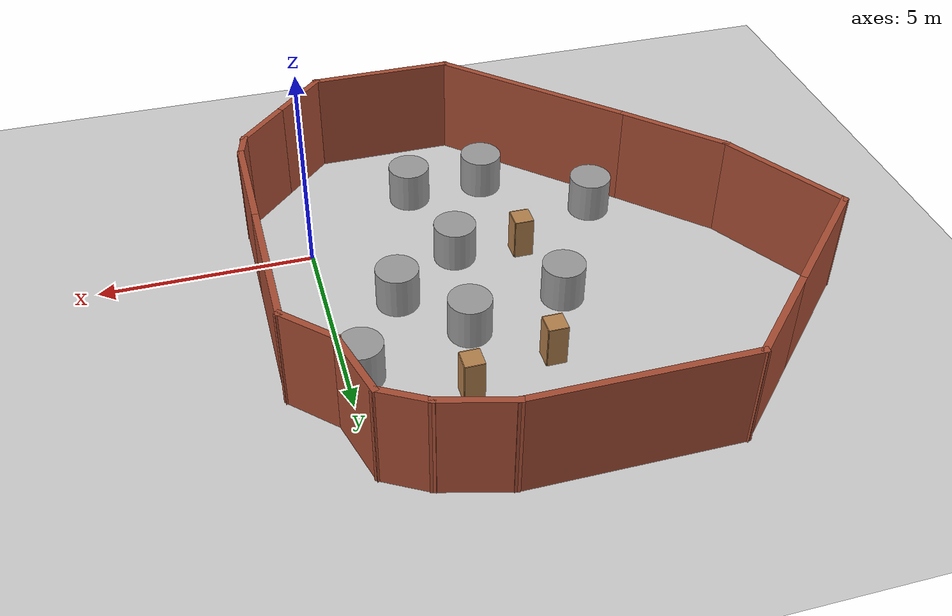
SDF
<sdf version="1.4">
 <world name="default">
  <light name="sun" type="directional">
   <pose>0 0 10 0 -0 0</pose>
   <diffuse>0.8 0.8 0.8 1</diffuse>
   <specular>0.2 0.2 0.2 1</specular>
   <attenuation>
    <range>1000</range>
    <constant>0.9</constant>
    <linear>0.01</linear>
    <quadratic>0.001</quadratic>
   </attenuation>
   <direction>0.5 0.1 -0.9</direction>
  </light>
  <model name="ground_plane">
   <static>1</static>
   <link name="link">
    <collision name="collision">
     <geometry><plane><normal>0 0 1</normal><size>100 100</size></plane></geometry>
     <surface><friction><ode><mu>100</mu><mu2>50</mu2></ode></friction></surface>
    </collision>
    <visual name="visual">
     <cast_shadows>0</cast_shadows>
     <geometry><plane><normal>0 0 1</normal><size>100 100</size></plane></geometry>
     <material>
      <script><uri>file://media/materials/scripts/gazebo.material</uri><name>Gazebo/Grey</name></script>
     </material>
    </visual>
    <velocity_decay><linear>0</linear><angular>0</angular></velocity_decay>
   </link>
  </model>
  <scene><ambient>0.4 0.4 0.4 1</ambient><background>0.7 0.7 0.7 1</background><shadows>0</shadows></scene>
  <physics name="default_physics" default="0" type="ode">
   <max_step_size>0.01</max_step_size>
   <real_time_factor>2</real_time_factor>
   <real_time_update_rate>200</real_time_update_rate>
  </physics>
  <scene><ambient>0.4 0.4 0.4 1</ambient><background>0.7 0.7 0.7 1</background><shadows>1</shadows></scene>
  <spherical_coordinates>
   <surface_model>EARTH_WGS84</surface_model>
   <latitude_deg>0</latitude_deg>
   <longitude_deg>0</longitude_deg>
   <elevation>0</elevation>
   <heading_deg>0</heading_deg>
  </spherical_coordinates>
  <model name="unit_cylinder_0">
   <pose>-3.293 0.855573 0.499993 -3e-06 2e-06 0</pose>
   <link name="link">
    <inertial>
     <mass>1</mass>
     <inertia><ixx>0.145833</ixx><ixy>0</ixy><ixz>0</ixz><iyy>0.145833</iyy><iyz>0</iyz><izz>0.125</izz></inertia>
    </inertial>
    <collision name="collision">
     <geometry><cylinder><radius>0.5</radius><length>1</length></cylinder></geometry>
    </collision>
    <visual name="visual">
     <geometry><cylinder><radius>0.5</radius><length>1</length></cylinder></geometry>
     <material>
      <script><name>Gazebo/Grey</name><uri>file://media/materials/scripts/gazebo.material</uri></script>
     </material>
    </visual>
   </link>
  </model>
  <model name="unit_cylinder_1">
   <pose>-0.333243 4.21471 0.499998 3e-06 -2e-06 0</pose>
   <link name="link">
    <inertial>
     <mass>1</mass>
     <inertia><ixx>0.145833</ixx><ixy>0</ixy><ixz>0</ixz><iyy>0.145833</iyy><iyz>0</iyz><izz>0.125</izz></inertia>
    </inertial>
    <collision name="collision">
     <geometry><cylinder><radius>0.5</radius><length>1</length></cylinder></geometry>
    </collision>
    <visual name="visual">
     <geometry><cylinder><radius>0.5</radius><length>1</length></cylinder></geometry>
     <material>
      <script><name>Gazebo/Grey</name><uri>file://media/materials/scripts/gazebo.material</uri></script>
     </material>
    </visual>
   </link>
  </model>
  <model name="unit_cylinder_2">
   <pose>-2.91667 3.48793 0.499993 -3e-06 2e-06 0</pose>
   <link name="link">
    <inertial>
     <mass>1</mass>
     <inertia><ixx>0.145833</ixx><ixy>0</ixy><ixz>0</ixz><iyy>0.145833</iyy><iyz>0</iyz><izz>0.125</izz></inertia>
    </inertial>
    <collision name="collision">
     <geometry><cylinder><radius>0.5</radius><length>1</length></cylinder></geometry>
    </collision>
    <visual name="visual">
     <geometry><cylinder><radius>0.5</radius><length>1</length></cylinder></geometry>
     <material>
      <script><name>Gazebo/Grey</name><uri>file://media/materials/scripts/gazebo.material</uri></script>
     </material>
    </visual>
   </link>
  </model>
  <model name="unit_cylinder_3">
   <pose>-5.29042 2.90103 0.499998 3e-06 -2e-06 0</pose>
   <link name="link">
    <inertial>
     <mass>1</mass>
     <inertia><ixx>0.145833</ixx><ixy>0</ixy><ixz>0</ixz><iyy>0.145833</iyy><iyz>0</iyz><izz>0.125</izz></inertia>
    </inertial>
    <collision name="collision">
     <geometry><cylinder><radius>0.5</radius><length>1</length></cylinder></geometry>
    </collision>
    <visual name="visual">
     <geometry><cylinder><radius>0.5</radius><length>1</length></cylinder></geometry>
     <material>
      <script><name>Gazebo/Grey</name><uri>file://media/materials/scripts/gazebo.material</uri></script>
     </material>
    </visual>
   </link>
  </model>
  <model name="cabinet">
   <static>1</static>
   <link name="cabinet_bottom_plate">
    <inertial>
     <pose>0 0 -1 0 -0 0</pose>
     <inertia><ixx>2.05</ixx><ixy>0</ixy><ixz>0</ixz><iyy>2.05</iyy><iyz>0</iyz><izz>2.05</izz></inertia>
     <mass>25</mass>
    </inertial>
    <collision name="cabinet_bottom_plate_geom">
     <pose>0 0 0.01 0 -0 0</pose>
     <geometry><box><size>0.45 0.45 0.02</size></box></geometry>
    </collision>
    <visual name="cabinet_bottom_plate_geom_visual">
     <pose>0 0 0.01 0 -0 0</pose>
     <geometry><box><size>0.45 0.45 0.02</size></box></geometry>
     <material>
      <script><uri>file://media/materials/scripts/gazebo.material</uri><name>Gazebo/Wood</name></script>
     </material>
    </visual>
    <collision name="cabinet_bottom_plate_geom_cabinet_back_plate">
     <pose>0.235 0 0.51 0 -0 0</pose>
     <geometry><box><size>0.02 0.45 1.02</size></box></geometry>
    </collision>
    <visual name="cabinet_bottom_plate_geom_cabinet_back_plate_visual">
     <pose>0.235 0 0.51 0 -0 0</pose>
     <geometry><box><size>0.02 0.45 1.02</size></box></geometry>
     <material>
      <script><uri>file://media/materials/scripts/gazebo.material</uri><name>Gazebo/Wood</name></script>
     </material>
    </visual>
    <collision name="cabinet_bottom_plate_geom_cabinet_left_plate">
     <pose>0 0.235 0.51 0 -0 0</pose>
     <geometry><box><size>0.45 0.02 1.02</size></box></geometry>
    </collision>
    <visual name="cabinet_bottom_plate_geom_cabinet_left_plate_visual">
     <pose>0 0.235 0.51 0 -0 0</pose>
     <geometry><box><size>0.45 0.02 1.02</size></box></geometry>
     <material>
      <script><uri>file://media/materials/scripts/gazebo.material</uri><name>Gazebo/Wood</name></script>
     </material>
    </visual>
    <collision name="cabinet_bottom_plate_geom_cabinet_middle_plate">
     <pose>0 0 0.51 0 -0 0</pose>
     <geometry><box><size>0.45 0.45 0.02</size></box></geometry>
    </collision>
    <visual name="cabinet_bottom_plate_geom_cabinet_middle_plate_visual">
     <pose>0 0 0.51 0 -0 0</pose>
     <geometry><box><size>0.45 0.45 0.02</size></box></geometry>
     <material>
      <script><uri>file://media/materials/scripts/gazebo.material</uri><name>Gazebo/Wood</name></script>
     </material>
    </visual>
    <collision name="cabinet_bottom_plate_geom_cabinet_right_plate">
     <pose>0 -0.235 0.51 0 -0 0</pose>
     <geometry><box><size>0.45 0.02 1.02</size></box></geometry>
    </collision>
    <visual name="cabinet_bottom_plate_geom_cabinet_right_plate_visual">
     <pose>0 -0.235 0.51 0 -0 0</pose>
     <geometry><box><size>0.45 0.02 1.02</size></box></geometry>
     <material>
      <script><uri>file://media/materials/scripts/gazebo.material</uri><name>Gazebo/Wood</name></script>
     </material>
    </visual>
    <collision name="cabinet_bottom_plate_geom_cabinet_top_plate">
     <pose>0 0 1.01 0 -0 0</pose>
     <geometry><box><size>0.45 0.45 0.02</size></box></geometry>
    </collision>
    <visual name="cabinet_bottom_plate_geom_cabinet_top_plate_visual">
     <pose>0 0 1.01 0 -0 0</pose>
     <geometry><box><size>0.45 0.45 0.02</size></box></geometry>
     <material>
      <script><uri>file://media/materials/scripts/gazebo.material</uri><name>Gazebo/Wood</name></script>
     </material>
    </visual>
   </link>
   <pose>-2.45991 5.27165 0 0 -0 0</pose>
  </model>
  <model name="cabinet_0">
   <static>1</static>
   <link name="cabinet_bottom_plate">
    <inertial>
     <pose>0 0 -1 0 -0 0</pose>
     <inertia><ixx>2.05</ixx><ixy>0</ixy><ixz>0</ixz><iyy>2.05</iyy><iyz>0</iyz><izz>2.05</izz></inertia>
     <mass>25</mass>
    </inertial>
    <collision name="cabinet_bottom_plate_geom">
     <pose>0 0 0.01 0 -0 0</pose>
     <geometry><box><size>0.45 0.45 0.02</size></box></geometry>
    </collision>
    <visual name="cabinet_bottom_plate_geom_visual">
     <pose>0 0 0.01 0 -0 0</pose>
     <geometry><box><size>0.45 0.45 0.02</size></box></geometry>
     <material>
      <script><uri>file://media/materials/scripts/gazebo.material</uri><name>Gazebo/Wood</name></script>
     </material>
    </visual>
    <collision name="cabinet_bottom_plate_geom_cabinet_back_plate">
     <pose>0.235 0 0.51 0 -0 0</pose>
     <geometry><box><size>0.02 0.45 1.02</size></box></geometry>
    </collision>
    <visual name="cabinet_bottom_plate_geom_cabinet_back_plate_visual">
     <pose>0.235 0 0.51 0 -0 0</pose>
     <geometry><box><size>0.02 0.45 1.02</size></box></geometry>
     <material>
      <script><uri>file://media/materials/scripts/gazebo.material</uri><name>Gazebo/Wood</name></script>
     </material>
    </visual>
    <collision name="cabinet_bottom_plate_geom_cabinet_left_plate">
     <pose>0 0.235 0.51 0 -0 0</pose>
     <geometry><box><size>0.45 0.02 1.02</size></box></geometry>
    </collision>
    <visual name="cabinet_bottom_plate_geom_cabinet_left_plate_visual">
     <pose>0 0.235 0.51 0 -0 0</pose>
     <geometry><box><size>0.45 0.02 1.02</size></box></geometry>
     <material>
      <script><uri>file://media/materials/scripts/gazebo.material</uri><name>Gazebo/Wood</name></script>
     </material>
    </visual>
    <collision name="cabinet_bottom_plate_geom_cabinet_middle_plate">
     <pose>0 0 0.51 0 -0 0</pose>
     <geometry><box><size>0.45 0.45 0.02</size></box></geometry>
    </collision>
    <visual name="cabinet_bottom_plate_geom_cabinet_middle_plate_visual">
     <pose>0 0 0.51 0 -0 0</pose>
     <geometry><box><size>0.45 0.45 0.02</size></box></geometry>
     <material>
      <script><uri>file://media/materials/scripts/gazebo.material</uri><name>Gazebo/Wood</name></script>
     </material>
    </visual>
    <collision name="cabinet_bottom_plate_geom_cabinet_right_plate">
     <pose>0 -0.235 0.51 0 -0 0</pose>
     <geometry><box><size>0.45 0.02 1.02</size></box></geometry>
    </collision>
    <visual name="cabinet_bottom_plate_geom_cabinet_right_plate_visual">
     <pose>0 -0.235 0.51 0 -0 0</pose>
     <geometry><box><size>0.45 0.02 1.02</size></box></geometry>
     <material>
      <script><uri>file://media/materials/scripts/gazebo.material</uri><name>Gazebo/Wood</name></script>
     </material>
    </visual>
    <collision name="cabinet_bottom_plate_geom_cabinet_top_plate">
     <pose>0 0 1.01 0 -0 0</pose>
     <geometry><box><size>0.45 0.45 0.02</size></box></geometry>
    </collision>
    <visual name="cabinet_bottom_plate_geom_cabinet_top_plate_visual">
     <pose>0 0 1.01 0 -0 0</pose>
     <geometry><box><size>0.45 0.45 0.02</size></box></geometry>
     <material>
      <script><uri>file://media/materials/scripts/gazebo.material</uri><name>Gazebo/Wood</name></script>
     </material>
    </visual>
   </link>
   <pose>-4.89515 1.01441 0 0 -0 0</pose>
  </model>
  <model name="cabinet_1">
   <static>1</static>
   <link name="cabinet_bottom_plate">
    <inertial>
     <pose>0 0 -1 0 -0 0</pose>
     <inertia><ixx>2.05</ixx><ixy>0</ixy><ixz>0</ixz><iyy>2.05</iyy><iyz>0</iyz><izz>2.05</izz></inertia>
     <mass>25</mass>
    </inertial>
    <collision name="cabinet_bottom_plate_geom">
     <pose>0 0 0.01 0 -0 0</pose>
     <geometry><box><size>0.45 0.45 0.02</size></box></geometry>
    </collision>
    <visual name="cabinet_bottom_plate_geom_visual">
     <pose>0 0 0.01 0 -0 0</pose>
     <geometry><box><size>0.45 0.45 0.02</size></box></geometry>
     <material>
      <script><uri>file://media/materials/scripts/gazebo.material</uri><name>Gazebo/Wood</name></script>
     </material>
    </visual>
    <collision name="cabinet_bottom_plate_geom_cabinet_back_plate">
     <pose>0.235 0 0.51 0 -0 0</pose>
     <geometry><box><size>0.02 0.45 1.02</size></box></geometry>
    </collision>
    <visual name="cabinet_bottom_plate_geom_cabinet_back_plate_visual">
     <pose>0.235 0 0.51 0 -0 0</pose>
     <geometry><box><size>0.02 0.45 1.02</size></box></geometry>
     <material>
      <script><uri>file://media/materials/scripts/gazebo.material</uri><name>Gazebo/Wood</name></script>
     </material>
    </visual>
    <collision name="cabinet_bottom_plate_geom_cabinet_left_plate">
     <pose>0 0.235 0.51 0 -0 0</pose>
     <geometry><box><size>0.45 0.02 1.02</size></box></geometry>
    </collision>
    <visual name="cabinet_bottom_plate_geom_cabinet_left_plate_visual">
     <pose>0 0.235 0.51 0 -0 0</pose>
     <geometry><box><size>0.45 0.02 1.02</size></box></geometry>
     <material>
      <script><uri>file://media/materials/scripts/gazebo.material</uri><name>Gazebo/Wood</name></script>
     </material>
    </visual>
    <collision name="cabinet_bottom_plate_geom_cabinet_middle_plate">
     <pose>0 0 0.51 0 -0 0</pose>
     <geometry><box><size>0.45 0.45 0.02</size></box></geometry>
    </collision>
    <visual name="cabinet_bottom_plate_geom_cabinet_middle_plate_visual">
     <pose>0 0 0.51 0 -0 0</pose>
     <geometry><box><size>0.45 0.45 0.02</size></box></geometry>
     <material>
      <script><uri>file://media/materials/scripts/gazebo.material</uri><name>Gazebo/Wood</name></script>
     </material>
    </visual>
    <collision name="cabinet_bottom_plate_geom_cabinet_right_plate">
     <pose>0 -0.235 0.51 0 -0 0</pose>
     <geometry><box><size>0.45 0.02 1.02</size></box></geometry>
    </collision>
    <visual name="cabinet_bottom_plate_geom_cabinet_right_plate_visual">
     <pose>0 -0.235 0.51 0 -0 0</pose>
     <geometry><box><size>0.45 0.02 1.02</size></box></geometry>
     <material>
      <script><uri>file://media/materials/scripts/gazebo.material</uri><name>Gazebo/Wood</name></script>
     </material>
    </visual>
    <collision name="cabinet_bottom_plate_geom_cabinet_top_plate">
     <pose>0 0 1.01 0 -0 0</pose>
     <geometry><box><size>0.45 0.45 0.02</size></box></geometry>
    </collision>
    <visual name="cabinet_bottom_plate_geom_cabinet_top_plate_visual">
     <pose>0 0 1.01 0 -0 0</pose>
     <geometry><box><size>0.45 0.45 0.02</size></box></geometry>
     <material>
      <script><uri>file://media/materials/scripts/gazebo.material</uri><name>Gazebo/Wood</name></script>
     </material>
    </visual>
   </link>
   <pose>-4.46047 4.70394 0 0 -0 0</pose>
  </model>
  <model name="unit_cylinder">
   <pose>-1.61364 2.07902 0.499998 3e-06 -3e-06 0</pose>
   <link name="link">
    <inertial>
     <mass>1</mass>
     <inertia><ixx>0.145833</ixx><ixy>0</ixy><ixz>0</ixz><iyy>0.145833</iyy><iyz>0</iyz><izz>0.125</izz></inertia>
    </inertial>
    <collision name="collision">
     <geometry><cylinder><radius>0.5</radius><length>1</length></cylinder></geometry>
    </collision>
    <visual name="visual">
     <geometry><cylinder><radius>0.5</radius><length>1</length></cylinder></geometry>
     <material>
      <script><name>Gazebo/Grey</name><uri>file://media/materials/scripts/gazebo.material</uri></script>
     </material>
    </visual>
   </link>
  </model>
  <model name="unit_cylinder_4">
   <pose>-2.79674 -1.69257 0.499998 3e-06 -4e-06 0</pose>
   <link name="link">
    <inertial>
     <mass>1</mass>
     <inertia><ixx>0.145833</ixx><ixy>0</ixy><ixz>0</ixz><iyy>0.145833</iyy><iyz>0</iyz><izz>0.125</izz></inertia>
    </inertial>
    <collision name="collision">
     <geometry><cylinder><radius>0.5</radius><length>1</length></cylinder></geometry>
    </collision>
    <visual name="visual">
     <geometry><cylinder><radius>0.5</radius><length>1</length></cylinder></geometry>
     <material>
      <script><name>Gazebo/Grey</name><uri>file://media/materials/scripts/gazebo.material</uri></script>
     </material>
    </visual>
   </link>
  </model>
  <model name="unit_cylinder_5">
   <pose>-4.68736 -1.75793 0.499998 3e-06 -4e-06 0</pose>
   <link name="link">
    <inertial>
     <mass>1</mass>
     <inertia><ixx>0.145833</ixx><ixy>0</ixy><ixz>0</ixz><iyy>0.145833</iyy><iyz>0</iyz><izz>0.125</izz></inertia>
    </inertial>
    <collision name="collision">
     <geometry><cylinder><radius>0.5</radius><length>1</length></cylinder></geometry>
    </collision>
    <visual name="visual">
     <geometry><cylinder><radius>0.5</radius><length>1</length></cylinder></geometry>
     <material>
      <script><name>Gazebo/Grey</name><uri>file://media/materials/scripts/gazebo.material</uri></script>
     </material>
    </visual>
   </link>
  </model>
  <model name="unit_cylinder_6">
   <pose>-7.0254 -0.101433 0.499998 3e-06 -4e-06 0</pose>
   <link name="link">
    <inertial>
     <mass>1</mass>
     <inertia><ixx>0.145833</ixx><ixy>0</ixy><ixz>0</ixz><iyy>0.145833</iyy><iyz>0</iyz><izz>0.125</izz></inertia>
    </inertial>
    <collision name="collision">
     <geometry><cylinder><radius>0.5</radius><length>1</length></cylinder></geometry>
    </collision>
    <visual name="visual">
     <geometry><cylinder><radius>0.5</radius><length>1</length></cylinder></geometry>
     <material>
      <script><name>Gazebo/Grey</name><uri>file://media/materials/scripts/gazebo.material</uri></script>
     </material>
    </visual>
   </link>
  </model>
  <model name="unit_cylinder_7">
   <pose>-1.35214 6.73744 0.499992 -3e-06 4e-06 0</pose>
   <link name="link">
    <inertial>
     <mass>1</mass>
     <inertia><ixx>0.145833</ixx><ixy>0</ixy><ixz>0</ixz><iyy>0.145833</iyy><iyz>0</iyz><izz>0.125</izz></inertia>
    </inertial>
    <collision name="collision">
     <geometry><cylinder><radius>0.5</radius><length>1</length></cylinder></geometry>
    </collision>
    <visual name="visual">
     <geometry><cylinder><radius>0.5</radius><length>1</length></cylinder></geometry>
     <material>
      <script><name>Gazebo/Grey</name><uri>file://media/materials/scripts/gazebo.material</uri></script>
     </material>
    </visual>
   </link>
  </model>
  <model name="target_reach">
   <pose>-5.00402 2.05485 0 0 -0 0</pose>
   <link name="Wall_10">
    <collision name="Wall_10_Collision">
     <geometry><box><size>1.25 0.15 2.5</size></box></geometry>
     <pose>0 0 1.25 0 -0 0</pose>
    </collision>
    <visual name="Wall_10_Visual">
     <pose>0 0 1.25 0 -0 0</pose>
     <geometry><box><size>1.25 0.15 2.5</size></box></geometry>
     <material>
      <script><uri>file://media/materials/scripts/gazebo.material</uri><name>Gazebo/Bricks</name></script>
      <ambient>1 1 1 1</ambient>
     </material>
     <meta><layer>0</layer></meta>
    </visual>
    <pose>4.44025 5.22574 0 0 -0 2.61799</pose>
   </link>
   <link name="Wall_11">
    <collision name="Wall_11_Collision">
     <geometry><box><size>1.75 0.15 2.5</size></box></geometry>
     <pose>0 0 1.25 0 -0 0</pose>
    </collision>
    <visual name="Wall_11_Visual">
     <pose>0 0 1.25 0 -0 0</pose>
     <geometry><box><size>1.75 0.15 2.5</size></box></geometry>
     <material>
      <script><uri>file://media/materials/scripts/gazebo.material</uri><name>Gazebo/Bricks</name></script>
      <ambient>1 1 1 1</ambient>
     </material>
     <meta><layer>0</layer></meta>
    </visual>
    <pose>3.1912 5.7078 0 0 -0 2.87979</pose>
   </link>
   <link name="Wall_12">
    <collision name="Wall_12_Collision">
     <geometry><box><size>5 0.15 2.5</size></box></geometry>
     <pose>0 0 1.25 0 -0 0</pose>
    </collision>
    <visual name="Wall_12_Visual">
     <pose>0 0 1.25 0 -0 0</pose>
     <geometry><box><size>5 0.15 2.5</size></box></geometry>
     <material>
      <script><uri>file://media/materials/scripts/gazebo.material</uri><name>Gazebo/Bricks</name></script>
      <ambient>1 1 1 1</ambient>
     </material>
     <meta><layer>0</layer></meta>
    </visual>
    <pose>-0.006541 5.91485 0 0 -0 3.14159</pose>
   </link>
   <link name="Wall_13">
    <collision name="Wall_13_Collision">
     <geometry><box><size>2.5 0.15 2.5</size></box></geometry>
     <pose>0 0 1.25 0 -0 0</pose>
    </collision>
    <visual name="Wall_13_Visual">
     <pose>0 0 1.25 0 -0 0</pose>
     <geometry><box><size>2.5 0.15 2.5</size></box></geometry>
     <material>
      <script><uri>file://media/materials/scripts/gazebo.material</uri><name>Gazebo/Bricks</name></script>
      <ambient>1 1 1 1</ambient>
     </material>
     <meta><layer>0</layer></meta>
    </visual>
    <pose>-3.26239 5.084 0 0 -0 -2.35619</pose>
   </link>
   <link name="Wall_14">
    <collision name="Wall_14_Collision">
     <geometry><box><size>3.25 0.15 2.5</size></box></geometry>
     <pose>0 0 1.25 0 -0 0</pose>
    </collision>
    <visual name="Wall_14_Visual">
     <pose>0 0 1.25 0 -0 0</pose>
     <geometry><box><size>3.25 0.15 2.5</size></box></geometry>
     <material>
      <script><uri>file://media/materials/scripts/gazebo.material</uri><name>Gazebo/Bricks</name></script>
      <ambient>1 1 1 1</ambient>
     </material>
     <meta><layer>0</layer></meta>
    </visual>
    <pose>-5.18926 3.15714 0 0 -0 -2.35619</pose>
   </link>
   <link name="Wall_15">
    <collision name="Wall_15_Collision">
     <geometry><box><size>3.25 0.15 2.5</size></box></geometry>
     <pose>0 0 1.25 0 -0 0</pose>
    </collision>
    <visual name="Wall_15_Visual">
     <pose>0 0 1.25 0 -0 0</pose>
     <geometry><box><size>3.25 0.15 2.5</size></box></geometry>
     <material>
      <script><uri>file://media/materials/scripts/gazebo.material</uri><name>Gazebo/Bricks</name></script>
      <ambient>1 1 1 1</ambient>
     </material>
     <meta><layer>0</layer></meta>
    </visual>
    <pose>-5.51027 0.718782 0 0 -0 -1.0472</pose>
   </link>
   <link name="Wall_16">
    <collision name="Wall_16_Collision">
     <geometry><box><size>2.75 0.15 2.5</size></box></geometry>
     <pose>0 0 1.25 0 -0 0</pose>
    </collision>
    <visual name="Wall_16_Visual">
     <pose>0 0 1.25 0 -0 0</pose>
     <geometry><box><size>2.75 0.15 2.5</size></box></geometry>
     <material>
      <script><uri>file://media/materials/scripts/gazebo.material</uri><name>Gazebo/Bricks</name></script>
      <ambient>1 1 1 1</ambient>
     </material>
     <meta><layer>0</layer></meta>
    </visual>
    <pose>-3.81603 -1.5428 0 0 -0 -0.785398</pose>
   </link>
   <link name="Wall_17">
    <collision name="Wall_17_Collision">
     <geometry><box><size>5.13155 0.15 2.5</size></box></geometry>
     <pose>0 0 1.25 0 -0 0</pose>
    </collision>
    <visual name="Wall_17_Visual">
     <pose>0 0 1.25 0 -0 0</pose>
     <geometry><box><size>5.13155 0.15 2.5</size></box></geometry>
     <material>
      <script><uri>file://media/materials/scripts/gazebo.material</uri><name>Gazebo/Bricks</name></script>
      <ambient>1 1 1 1</ambient>
     </material>
     <meta><layer>0</layer></meta>
    </visual>
    <pose>-1.10139 -4.18844 0 0 -0 -0.765809</pose>
   </link>
   <link name="Wall_2">
    <collision name="Wall_2_Collision">
     <geometry><box><size>3.5 0.15 2.5</size></box></geometry>
     <pose>0 0 1.25 0 -0 0</pose>
    </collision>
    <visual name="Wall_2_Visual">
     <pose>0 0 1.25 0 -0 0</pose>
     <geometry><box><size>3.5 0.15 2.5</size></box></geometry>
     <material>
      <script><uri>file://media/materials/scripts/gazebo.material</uri><name>Gazebo/Bricks</name></script>
      <ambient>1 1 1 1</ambient>
     </material>
     <meta><layer>0</layer></meta>
    </visual>
    <pose>2.36902 -5.91485 0 0 -0 0</pose>
   </link>
   <link name="Wall_3">
    <collision name="Wall_3_Collision">
     <geometry><box><size>1.75 0.15 2.5</size></box></geometry>
     <pose>0 0 1.25 0 -0 0</pose>
    </collision>
    <visual name="Wall_3_Visual">
     <pose>0 0 1.25 0 -0 0</pose>
     <geometry><box><size>1.75 0.15 2.5</size></box></geometry>
     <material>
      <script><uri>file://media/materials/scripts/gazebo.material</uri><name>Gazebo/Bricks</name></script>
      <ambient>1 1 1 1</ambient>
     </material>
     <meta><layer>0</layer></meta>
    </visual>
    <pose>4.6097 -5.34917 0 0 -0 0.785398</pose>
   </link>
   <link name="Wall_4">
    <collision name="Wall_4_Collision">
     <geometry><box><size>1.5 0.15 2.5</size></box></geometry>
     <pose>0 0 1.25 0 -0 0</pose>
    </collision>
    <visual name="Wall_4_Visual">
     <pose>0 0 1.25 0 -0 0</pose>
     <geometry><box><size>1.5 0.15 2.5</size></box></geometry>
     <material>
      <script><uri>file://media/materials/scripts/gazebo.material</uri><name>Gazebo/Bricks</name></script>
      <ambient>1 1 1 1</ambient>
     </material>
     <meta><layer>0</layer></meta>
    </visual>
    <pose>5.65268 -4.30619 0 0 -0 0.785398</pose>
   </link>
   <link name="Wall_5">
    <collision name="Wall_5_Collision">
     <geometry><box><size>0.75 0.15 2.5</size></box></geometry>
     <pose>0 0 1.25 0 -0 0</pose>
    </collision>
    <visual name="Wall_5_Visual">
     <pose>0 0 1.25 0 -0 0</pose>
     <geometry><box><size>0.75 0.15 2.5</size></box></geometry>
     <material>
      <script><uri>file://media/materials/scripts/gazebo.material</uri><name>Gazebo/Bricks</name></script>
      <ambient>1 1 1 1</ambient>
     </material>
     <meta><layer>0</layer></meta>
    </visual>
    <pose>6.20763 -3.53911 0 0 -0 1.309</pose>
   </link>
   <link name="Wall_6">
    <collision name="Wall_6_Collision">
     <geometry><box><size>2.5 0.15 2.5</size></box></geometry>
     <pose>0 0 1.25 0 -0 0</pose>
    </collision>
    <visual name="Wall_6_Visual">
     <pose>0 0 1.25 0 -0 0</pose>
     <geometry><box><size>2.5 0.15 2.5</size></box></geometry>
     <material>
      <script><uri>file://media/materials/scripts/gazebo.material</uri><name>Gazebo/Bricks</name></script>
      <ambient>1 1 1 1</ambient>
     </material>
     <meta><layer>0</layer></meta>
    </visual>
    <pose>6.28527 -2.07433 0 0 -0 1.5708</pose>
   </link>
   <link name="Wall_7">
    <collision name="Wall_7_Collision">
     <geometry><box><size>3.5 0.15 2.5</size></box></geometry>
     <pose>0 0 1.25 0 -0 0</pose>
    </collision>
    <visual name="Wall_7_Visual">
     <pose>0 0 1.25 0 -0 0</pose>
     <geometry><box><size>3.5 0.15 2.5</size></box></geometry>
     <material>
      <script><uri>file://media/materials/scripts/gazebo.material</uri><name>Gazebo/Bricks</name></script>
      <ambient>1 1 1 1</ambient>
     </material>
     <meta><layer>0</layer></meta>
    </visual>
    <pose>6.28527 0.775667 0 0 -0 1.5708</pose>
   </link>
   <link name="Wall_8">
    <collision name="Wall_8_Collision">
     <geometry><box><size>1.5 0.15 2.5</size></box></geometry>
     <pose>0 0 1.25 0 -0 0</pose>
    </collision>
    <visual name="Wall_8_Visual">
     <pose>0 0 1.25 0 -0 0</pose>
     <geometry><box><size>1.5 0.15 2.5</size></box></geometry>
     <material>
      <script><uri>file://media/materials/scripts/gazebo.material</uri><name>Gazebo/Bricks</name></script>
      <ambient>1 1 1 1</ambient>
     </material>
     <meta><layer>0</layer></meta>
    </visual>
    <pose>5.80798 2.92796 0 0 -0 2.35619</pose>
   </link>
   <link name="Wall_9">
    <collision name="Wall_9_Collision">
     <geometry><box><size>1.75 0.15 2.5</size></box></geometry>
     <pose>0 0 1.25 0 -0 0</pose>
    </collision>
    <visual name="Wall_9_Visual">
     <pose>0 0 1.25 0 -0 0</pose>
     <geometry><box><size>1.75 0.15 2.5</size></box></geometry>
     <material>
      <script><uri>file://media/materials/scripts/gazebo.material</uri><name>Gazebo/Bricks</name></script>
      <ambient>1 1 1 1</ambient>
     </material>
     <meta><layer>0</layer></meta>
    </visual>
    <pose>5.12362 4.178 0 0 -0 1.8326</pose>
   </link>
   <static>1</static>
  </model>
 </world>
</sdf>
